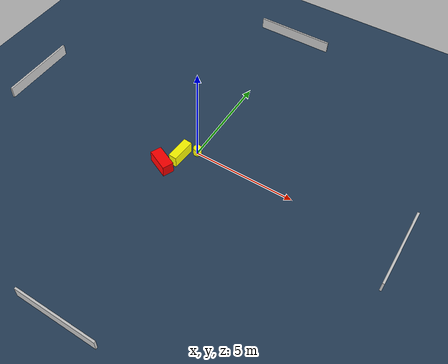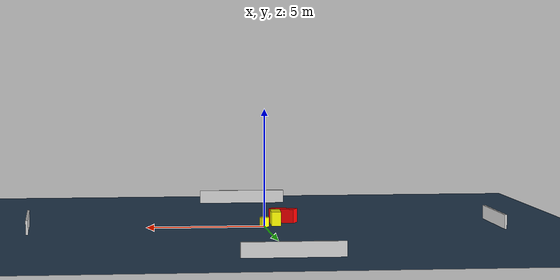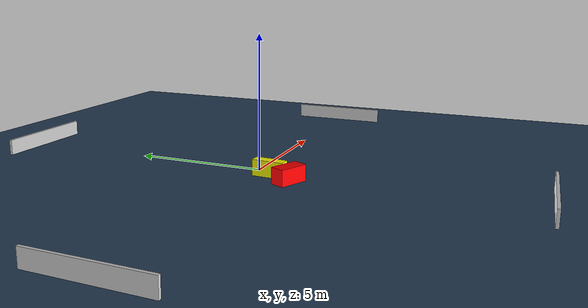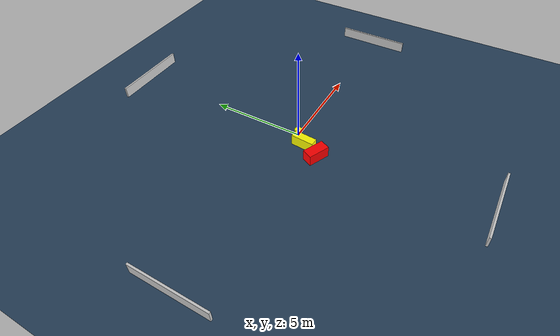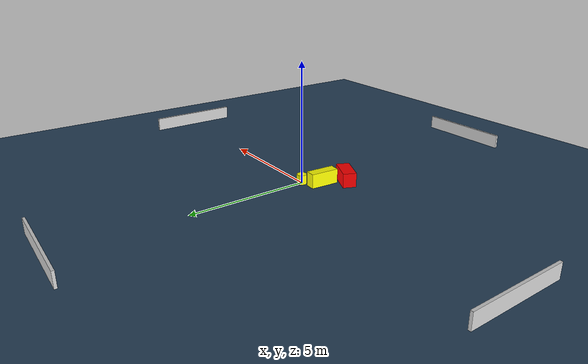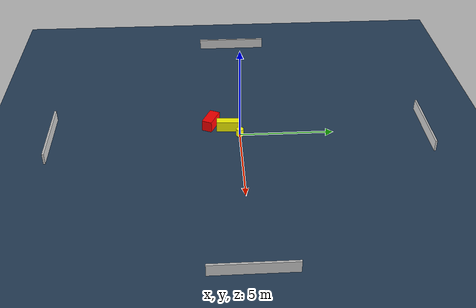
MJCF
<?xml version="1.0" ?>
<mujoco model="generated_environment">
  <option timestep="0.01" integrator="RK4" cone="elliptic"/>
  <default>
    <geom density="1"/>
  </default>
  <asset>
    <texture builtin="gradient" height="3072" name="skybox" rgb1="0.3 0.5 0.7" rgb2="0 0 0" type="skybox" width="512"/>
    <texture builtin="checker" height="300" name="groundplane" rgb1="0.2 0.3 0.4" rgb2="0.1 0.2 0.3" type="2d" width="300"/>
    <material name="groundplane" reflectance="0.2" texrepeat="5 5" texture="groundplane"/>
  </asset>
  <worldbody>
    <light dir="0 0 -1" directional="true" pos="0 0 1.5"/>
    <geom condim="3" friction="0.5 0.005 0.001" material="groundplane" name="floor" pos="0 0 0" size="0 0 0.05" type="plane"/>
    <body name="walls">
      <geom name="wall_1" condim="4" pos="-10.0 0.0 0.3" rgba="0.800000011920929 0.800000011920929 0.800000011920929 1.0" size="0.05 2.0 0.3" type="box"/>
      <geom name="wall_2" condim="4" pos="10.0 0.0 0.3" rgba="0.800000011920929 0.800000011920929 0.800000011920929 1.0" size="0.05 2.0 0.3" type="box"/>
      <geom name="wall_3" condim="4" pos="0.0 -10.0 0.3" rgba="0.800000011920929 0.800000011920929 0.800000011920929 1.0" size="2.0 0.05 0.3" type="box"/>
      <geom name="wall_4" condim="4" pos="0.0 10.0 0.3" rgba="0.800000011920929 0.800000011920929 0.800000011920929 1.0" size="2.0 0.05 0.3" type="box"/>
    </body>
    <body name="robot">
      <joint name="joint_x" type="slide" pos="0 0 0" axis="1 0 0"/>
      <joint name="joint_y" type="slide" pos="0 0 0" axis="0 1 0"/>
      <geom name="robot" type="cylinder" pos="0.0 0.0 0.2" size="0.2 0.2 0.0" mass="5.0" friction="1.0 0.005 0.0001" condim="4" rgba="1.0 1.0 0.0 1.0"/>
    </body>
    <body name="obstacle_1_movable">
      <geom name="obstacle_1_movable" condim="4" pos="-0.5523934287802656 -0.6267385472977886 0.3" euler="0 0 86.00290946027133" friction="0.0 0.005 0.001" rgba="1.0 1.0 0.0 1.0" size="0.5981080342876317 0.2058048483207262 0.3" type="box" mass="0.1"/>
      <joint type="free"/>
    </body>
    <body name="obstacle_2_static">
      <geom name="obstacle_2_static" condim="4" pos="-0.9716701260084456 -1.5228012976636445 0.3" euler="0 0 335.3596899837911" friction="0.0 0.005 0.001" rgba="1.0 0.0 0.0 1.0" size="0.5635470076721838 0.27336440621534575 0.3" type="box"/>
    </body>
  </worldbody>
  <actuator>
    <motor name="actuator_x" joint="joint_x" gear="1" ctrlrange="-1 1"/>
    <motor name="actuator_y" joint="joint_y" gear="1" ctrlrange="-1 1"/>
  </actuator>
</mujoco>
